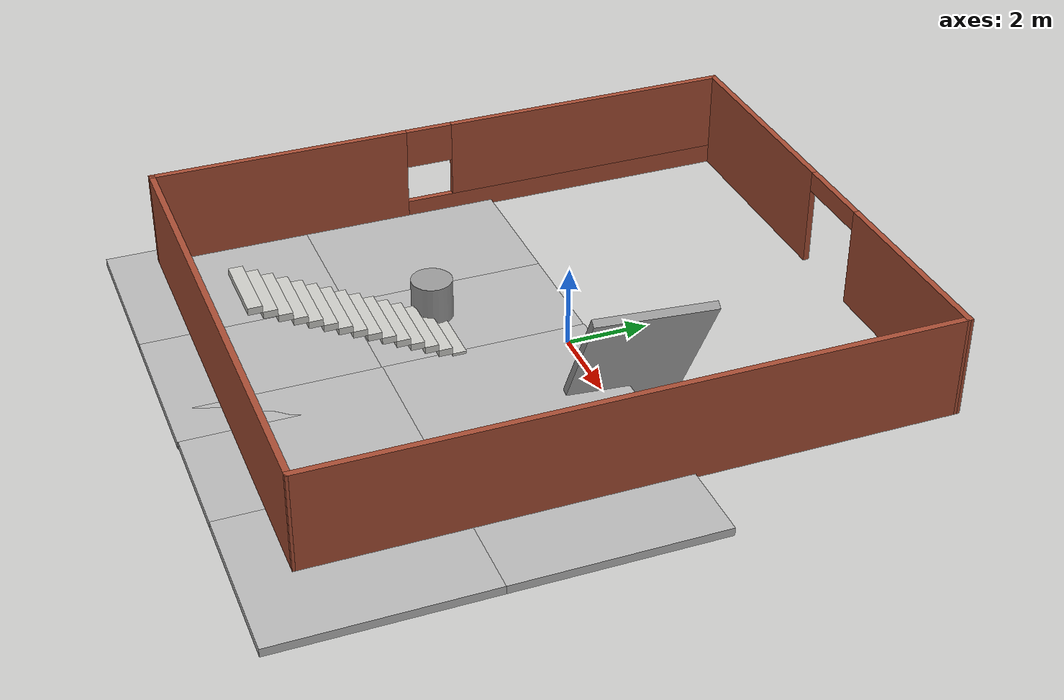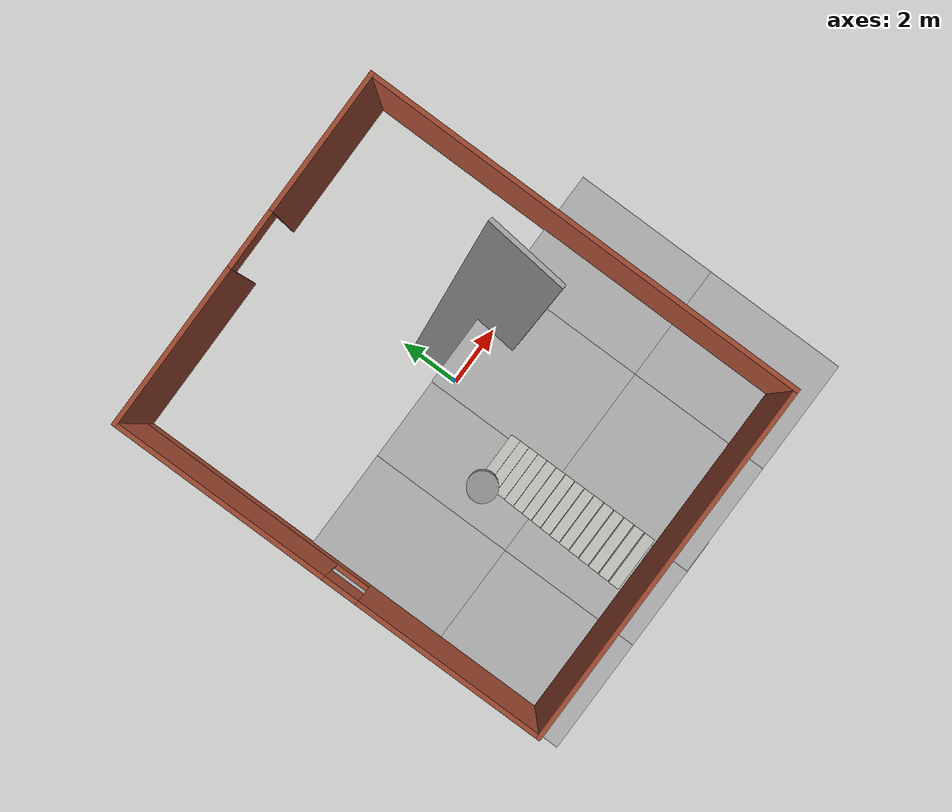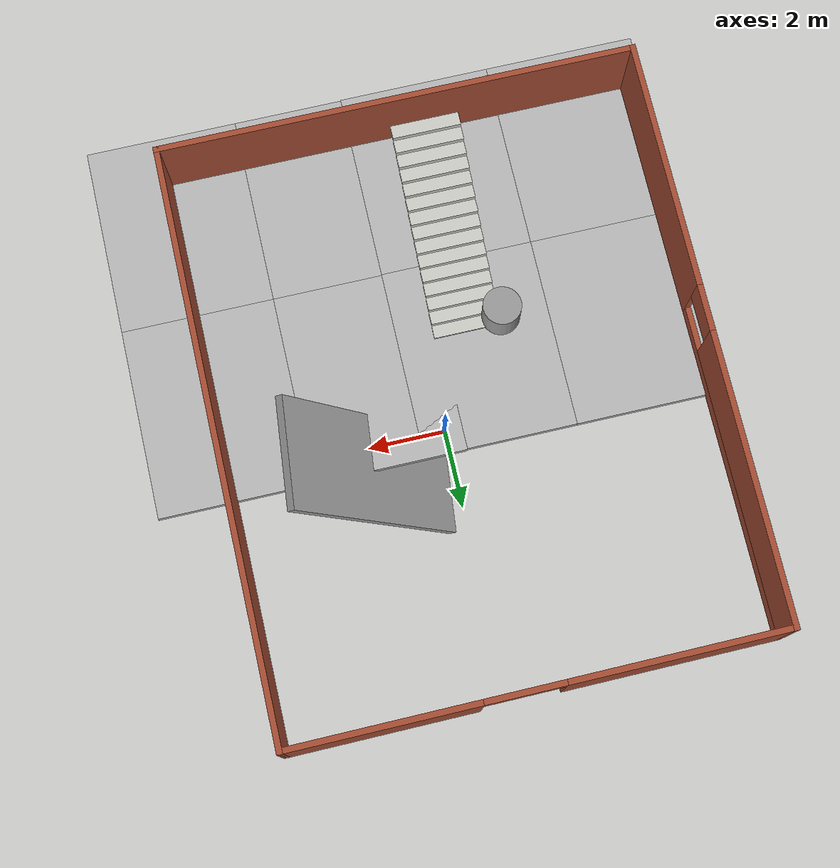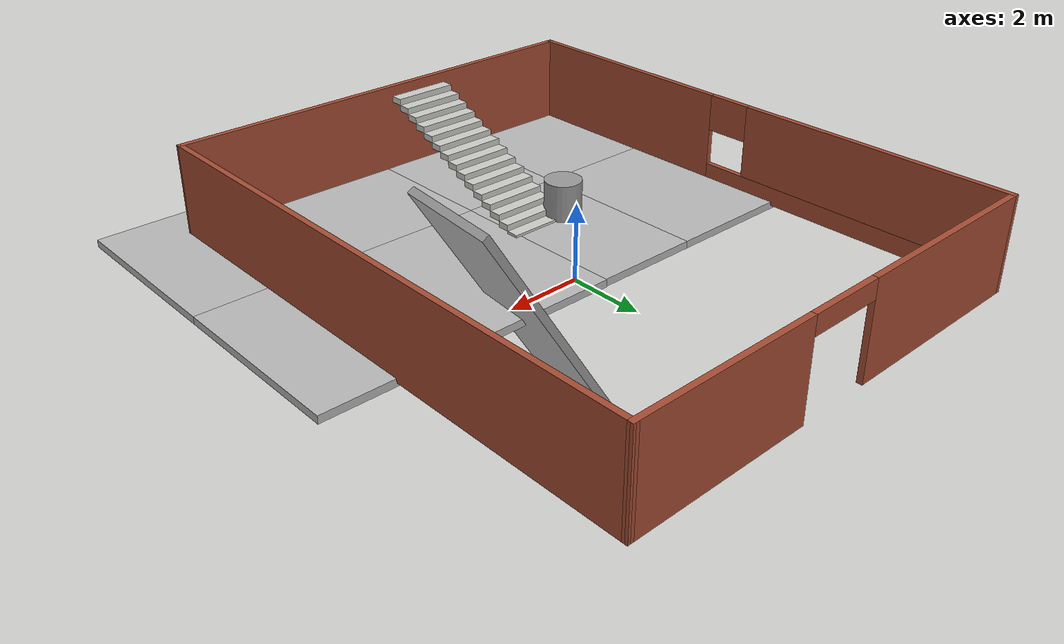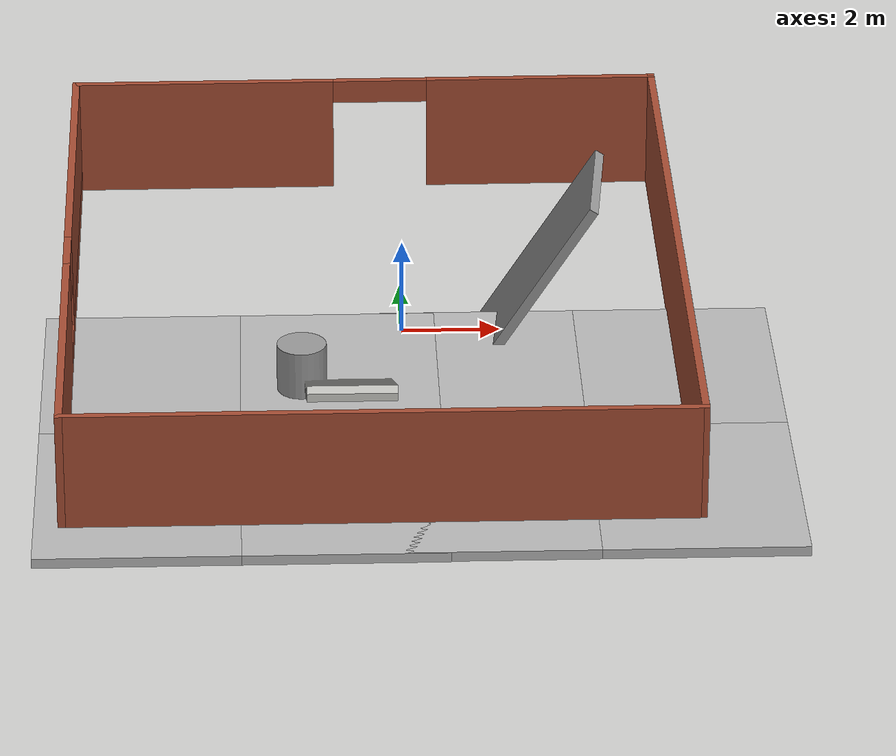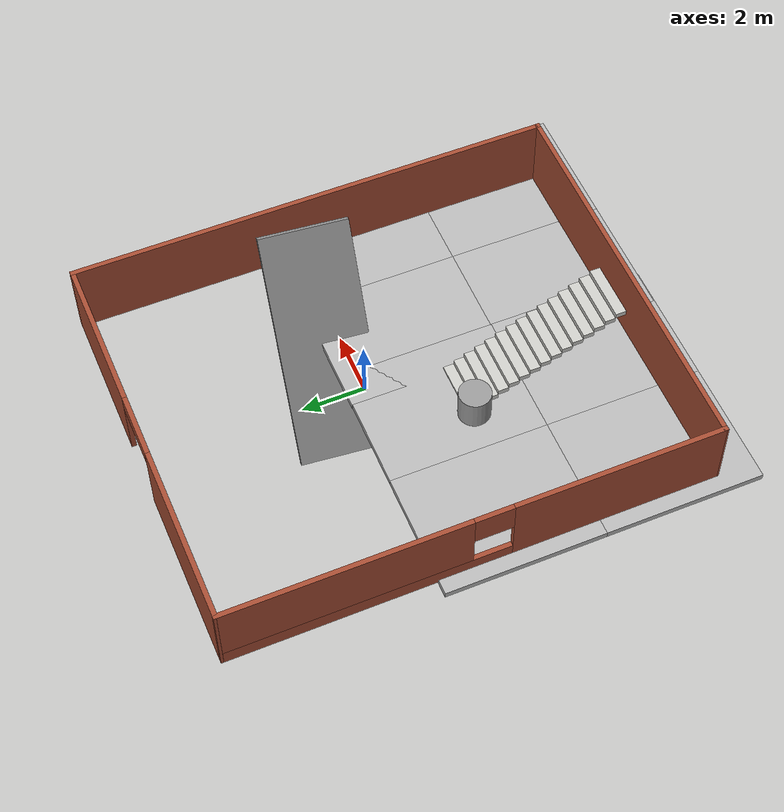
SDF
<sdf version="1.6">
 <world name="default">
  <model name="mud_box_3">
   <static>1</static>
   <link name="link">
    <collision name="collision"><geometry><box><size>8 10 0.2</size></box></geometry></collision>
    <visual name="visual_1">
     <pose>-2 2.5 0 0 -0 0</pose>
     <cast_shadows>0</cast_shadows>
     <geometry><box><size>4 5 0.2</size></box></geometry>
     <material>
      <script>
       <uri>model://mud_box/materials/scripts</uri>
       <uri>model://mud_box/materials/textures</uri>
       <name>vrc/mud</name>
      </script>
     </material>
    </visual>
    <visual name="visual_2">
     <pose>2 2.5 0 0 -0 0</pose>
     <cast_shadows>0</cast_shadows>
     <geometry><box><size>4 5 0.2</size></box></geometry>
     <material>
      <script>
       <uri>model://mud_box/materials/scripts</uri>
       <uri>model://mud_box/materials/textures</uri>
       <name>vrc/mud</name>
      </script>
     </material>
    </visual>
    <visual name="visual_3">
     <pose>2 -2.5 0 0 -0 0</pose>
     <cast_shadows>0</cast_shadows>
     <geometry><box><size>4 5 0.2</size></box></geometry>
     <material>
      <script>
       <uri>model://mud_box/materials/scripts</uri>
       <uri>model://mud_box/materials/textures</uri>
       <name>vrc/mud</name>
      </script>
     </material>
    </visual>
    <visual name="visual_4">
     <pose>-2 -2.5 0 0 -0 0</pose>
     <cast_shadows>0</cast_shadows>
     <geometry><box><size>4 5 0.2</size></box></geometry>
     <material>
      <script>
       <uri>model://mud_box/materials/scripts</uri>
       <uri>model://mud_box/materials/textures</uri>
       <name>vrc/mud</name>
      </script>
     </material>
    </visual>
   </link>
   <pose>3.54536 -4.40262 0 0 -0 0</pose>
  </model>
  <model name="mud_box_4">
   <static>1</static>
   <link name="link">
    <collision name="collision"><geometry><box><size>8 10 0.2</size></box></geometry></collision>
    <visual name="visual_1">
     <pose>-2 2.5 0 0 -0 0</pose>
     <cast_shadows>0</cast_shadows>
     <geometry><box><size>4 5 0.2</size></box></geometry>
     <material>
      <script>
       <uri>model://mud_box/materials/scripts</uri>
       <uri>model://mud_box/materials/textures</uri>
       <name>vrc/mud</name>
      </script>
     </material>
    </visual>
    <visual name="visual_2">
     <pose>2 2.5 0 0 -0 0</pose>
     <cast_shadows>0</cast_shadows>
     <geometry><box><size>4 5 0.2</size></box></geometry>
     <material>
      <script>
       <uri>model://mud_box/materials/scripts</uri>
       <uri>model://mud_box/materials/textures</uri>
       <name>vrc/mud</name>
      </script>
     </material>
    </visual>
    <visual name="visual_3">
     <pose>2 -2.5 0 0 -0 0</pose>
     <cast_shadows>0</cast_shadows>
     <geometry><box><size>4 5 0.2</size></box></geometry>
     <material>
      <script>
       <uri>model://mud_box/materials/scripts</uri>
       <uri>model://mud_box/materials/textures</uri>
       <name>vrc/mud</name>
      </script>
     </material>
    </visual>
    <visual name="visual_4">
     <pose>-2 -2.5 0 0 -0 0</pose>
     <cast_shadows>0</cast_shadows>
     <geometry><box><size>4 5 0.2</size></box></geometry>
     <material>
      <script>
       <uri>model://mud_box/materials/scripts</uri>
       <uri>model://mud_box/materials/textures</uri>
       <name>vrc/mud</name>
      </script>
     </material>
    </visual>
   </link>
   <pose>-3.33563 -4.4235 0 0 -0 0</pose>
  </model>
  <model name="unit_cylinder_0">
   <pose>-2.09685 -2.63141 0.600224 0.000162 0.000418 0.000599</pose>
   <link name="link">
    <inertial>
     <mass>1</mass>
     <inertia><ixx>0.145833</ixx><ixy>0</ixy><ixz>0</ixz><iyy>0.145833</iyy><iyz>0</iyz><izz>0.125</izz></inertia>
    </inertial>
    <collision name="collision">
     <geometry><cylinder><radius>0.5</radius><length>1</length></cylinder></geometry>
    </collision>
    <visual name="visual">
     <geometry><cylinder><radius>0.5</radius><length>1</length></cylinder></geometry>
     <material>
      <script><name>Gazebo/Grey</name><uri>file://media/materials/scripts/gazebo.material</uri></script>
     </material>
    </visual>
   </link>
  </model>
  <model name="botenv1_0">
   <pose>-0.614757 -0.578065 0 0 -0 0</pose>
   <link name="Stairs_2">
    <visual name="Stairs_2_Visual_0">
     <pose>-0.549734 -2.00833 0.083333 0 -0 0</pose>
     <geometry><box><size>1.75 0.334 0.166667</size></box></geometry>
     <material>
      <script><uri>file://media/materials/scripts/gazebo.material</uri><name>Gazebo/CeilingTiled</name></script>
      <ambient>0.760784 0.662745 0.627451 1</ambient>
     </material>
    </visual>
    <collision name="Stairs_2_Collision_0">
     <geometry><box><size>1.75 0.334 0.166667</size></box></geometry>
     <pose>-0.549734 -2.00833 0.083333 0 -0 0</pose>
    </collision>
    <visual name="Stairs_2_Visual_1">
     <pose>-0.549734 -2.34233 0.25 0 -0 0</pose>
     <geometry><box><size>1.75 0.334 0.166667</size></box></geometry>
     <material>
      <script><uri>file://media/materials/scripts/gazebo.material</uri><name>Gazebo/CeilingTiled</name></script>
      <ambient>0.760784 0.662745 0.627451 1</ambient>
     </material>
    </visual>
    <collision name="Stairs_2_Collision_1">
     <geometry><box><size>1.75 0.334 0.166667</size></box></geometry>
     <pose>-0.549734 -2.34233 0.25 0 -0 0</pose>
    </collision>
    <visual name="Stairs_2_Visual_2">
     <pose>-0.549734 -2.67633 0.416667 0 -0 0</pose>
     <geometry><box><size>1.75 0.334 0.166667</size></box></geometry>
     <material>
      <script><uri>file://media/materials/scripts/gazebo.material</uri><name>Gazebo/CeilingTiled</name></script>
      <ambient>0.760784 0.662745 0.627451 1</ambient>
     </material>
    </visual>
    <collision name="Stairs_2_Collision_2">
     <geometry><box><size>1.75 0.334 0.166667</size></box></geometry>
     <pose>-0.549734 -2.67633 0.416667 0 -0 0</pose>
    </collision>
    <visual name="Stairs_2_Visual_3">
     <pose>-0.549734 -3.01033 0.583333 0 -0 0</pose>
     <geometry><box><size>1.75 0.334 0.166667</size></box></geometry>
     <material>
      <script><uri>file://media/materials/scripts/gazebo.material</uri><name>Gazebo/CeilingTiled</name></script>
      <ambient>0.760784 0.662745 0.627451 1</ambient>
     </material>
    </visual>
    <collision name="Stairs_2_Collision_3">
     <geometry><box><size>1.75 0.334 0.166667</size></box></geometry>
     <pose>-0.549734 -3.01033 0.583333 0 -0 0</pose>
    </collision>
    <visual name="Stairs_2_Visual_4">
     <pose>-0.549734 -3.34433 0.75 0 -0 0</pose>
     <geometry><box><size>1.75 0.334 0.166667</size></box></geometry>
     <material>
      <script><uri>file://media/materials/scripts/gazebo.material</uri><name>Gazebo/CeilingTiled</name></script>
      <ambient>0.760784 0.662745 0.627451 1</ambient>
     </material>
    </visual>
    <collision name="Stairs_2_Collision_4">
     <geometry><box><size>1.75 0.334 0.166667</size></box></geometry>
     <pose>-0.549734 -3.34433 0.75 0 -0 0</pose>
    </collision>
    <visual name="Stairs_2_Visual_5">
     <pose>-0.549734 -3.67833 0.916667 0 -0 0</pose>
     <geometry><box><size>1.75 0.334 0.166667</size></box></geometry>
     <material>
      <script><uri>file://media/materials/scripts/gazebo.material</uri><name>Gazebo/CeilingTiled</name></script>
      <ambient>0.760784 0.662745 0.627451 1</ambient>
     </material>
    </visual>
    <collision name="Stairs_2_Collision_5">
     <geometry><box><size>1.75 0.334 0.166667</size></box></geometry>
     <pose>-0.549734 -3.67833 0.916667 0 -0 0</pose>
    </collision>
    <visual name="Stairs_2_Visual_6">
     <pose>-0.549734 -4.01233 1.08333 0 -0 0</pose>
     <geometry><box><size>1.75 0.334 0.166667</size></box></geometry>
     <material>
      <script><uri>file://media/materials/scripts/gazebo.material</uri><name>Gazebo/CeilingTiled</name></script>
      <ambient>0.760784 0.662745 0.627451 1</ambient>
     </material>
    </visual>
    <collision name="Stairs_2_Collision_6">
     <geometry><box><size>1.75 0.334 0.166667</size></box></geometry>
     <pose>-0.549734 -4.01233 1.08333 0 -0 0</pose>
    </collision>
    <visual name="Stairs_2_Visual_7">
     <pose>-0.549734 -4.34633 1.25 0 -0 0</pose>
     <geometry><box><size>1.75 0.334 0.166667</size></box></geometry>
     <material>
      <script><uri>file://media/materials/scripts/gazebo.material</uri><name>Gazebo/CeilingTiled</name></script>
      <ambient>0.760784 0.662745 0.627451 1</ambient>
     </material>
    </visual>
    <collision name="Stairs_2_Collision_7">
     <geometry><box><size>1.75 0.334 0.166667</size></box></geometry>
     <pose>-0.549734 -4.34633 1.25 0 -0 0</pose>
    </collision>
    <visual name="Stairs_2_Visual_8">
     <pose>-0.549734 -4.68033 1.41667 0 -0 0</pose>
     <geometry><box><size>1.75 0.334 0.166667</size></box></geometry>
     <material>
      <script><uri>file://media/materials/scripts/gazebo.material</uri><name>Gazebo/CeilingTiled</name></script>
      <ambient>0.760784 0.662745 0.627451 1</ambient>
     </material>
    </visual>
    <collision name="Stairs_2_Collision_8">
     <geometry><box><size>1.75 0.334 0.166667</size></box></geometry>
     <pose>-0.549734 -4.68033 1.41667 0 -0 0</pose>
    </collision>
    <visual name="Stairs_2_Visual_9">
     <pose>-0.549734 -5.01433 1.58333 0 -0 0</pose>
     <geometry><box><size>1.75 0.334 0.166667</size></box></geometry>
     <material>
      <script><uri>file://media/materials/scripts/gazebo.material</uri><name>Gazebo/CeilingTiled</name></script>
      <ambient>0.760784 0.662745 0.627451 1</ambient>
     </material>
    </visual>
    <collision name="Stairs_2_Collision_9">
     <geometry><box><size>1.75 0.334 0.166667</size></box></geometry>
     <pose>-0.549734 -5.01433 1.58333 0 -0 0</pose>
    </collision>
    <visual name="Stairs_2_Visual_10">
     <pose>-0.549734 -5.34833 1.75 0 -0 0</pose>
     <geometry><box><size>1.75 0.334 0.166667</size></box></geometry>
     <material>
      <script><uri>file://media/materials/scripts/gazebo.material</uri><name>Gazebo/CeilingTiled</name></script>
      <ambient>0.760784 0.662745 0.627451 1</ambient>
     </material>
    </visual>
    <collision name="Stairs_2_Collision_10">
     <geometry><box><size>1.75 0.334 0.166667</size></box></geometry>
     <pose>-0.549734 -5.34833 1.75 0 -0 0</pose>
    </collision>
    <visual name="Stairs_2_Visual_11">
     <pose>-0.549734 -5.68233 1.91667 0 -0 0</pose>
     <geometry><box><size>1.75 0.334 0.166667</size></box></geometry>
     <material>
      <script><uri>file://media/materials/scripts/gazebo.material</uri><name>Gazebo/CeilingTiled</name></script>
      <ambient>0.760784 0.662745 0.627451 1</ambient>
     </material>
    </visual>
    <collision name="Stairs_2_Collision_11">
     <geometry><box><size>1.75 0.334 0.166667</size></box></geometry>
     <pose>-0.549734 -5.68233 1.91667 0 -0 0</pose>
    </collision>
    <visual name="Stairs_2_Visual_12">
     <pose>-0.549734 -6.01633 2.08333 0 -0 0</pose>
     <geometry><box><size>1.75 0.334 0.166667</size></box></geometry>
     <material>
      <script><uri>file://media/materials/scripts/gazebo.material</uri><name>Gazebo/CeilingTiled</name></script>
      <ambient>0.760784 0.662745 0.627451 1</ambient>
     </material>
    </visual>
    <collision name="Stairs_2_Collision_12">
     <geometry><box><size>1.75 0.334 0.166667</size></box></geometry>
     <pose>-0.549734 -6.01633 2.08333 0 -0 0</pose>
    </collision>
    <visual name="Stairs_2_Visual_13">
     <pose>-0.549734 -6.35033 2.25 0 -0 0</pose>
     <geometry><box><size>1.75 0.334 0.166667</size></box></geometry>
     <material>
      <script><uri>file://media/materials/scripts/gazebo.material</uri><name>Gazebo/CeilingTiled</name></script>
      <ambient>0.760784 0.662745 0.627451 1</ambient>
     </material>
    </visual>
    <collision name="Stairs_2_Collision_13">
     <geometry><box><size>1.75 0.334 0.166667</size></box></geometry>
     <pose>-0.549734 -6.35033 2.25 0 -0 0</pose>
    </collision>
    <visual name="Stairs_2_Visual_14">
     <pose>-0.549734 -6.68433 2.41667 0 -0 0</pose>
     <geometry><box><size>1.75 0.334 0.166667</size></box></geometry>
     <material>
      <script><uri>file://media/materials/scripts/gazebo.material</uri><name>Gazebo/CeilingTiled</name></script>
      <ambient>0.760784 0.662745 0.627451 1</ambient>
     </material>
    </visual>
    <collision name="Stairs_2_Collision_14">
     <geometry><box><size>1.75 0.334 0.166667</size></box></geometry>
     <pose>-0.549734 -6.68433 2.41667 0 -0 0</pose>
    </collision>
   </link>
   <link name="Wall_11">
    <pose>0 7.53397 0 0 0 -3.13611</pose>
    <visual name="Wall_11_Visual_0">
     <pose>-3.80989 0 1.25 0 -0 0</pose>
     <geometry><box><size>4.9244 0.15 2.5</size></box></geometry>
     <material>
      <script><uri>file://media/materials/scripts/gazebo.material</uri><name>Gazebo/Bricks</name></script>
      <ambient>1 1 1 1</ambient>
     </material>
    </visual>
    <collision name="Wall_11_Collision_0">
     <geometry><box><size>4.9244 0.15 2.5</size></box></geometry>
     <pose>-3.80989 0 1.25 0 -0 0</pose>
    </collision>
    <visual name="Wall_11_Visual_1">
     <pose>3.47078 0 1.25 0 -0 0</pose>
     <geometry><box><size>5.60263 0.15 2.5</size></box></geometry>
     <material>
      <script><uri>file://media/materials/scripts/gazebo.material</uri><name>Gazebo/Bricks</name></script>
      <ambient>1 1 1 1</ambient>
     </material>
    </visual>
    <collision name="Wall_11_Collision_1">
     <geometry><box><size>5.60263 0.15 2.5</size></box></geometry>
     <pose>3.47078 0 1.25 0 -0 0</pose>
    </collision>
    <visual name="Wall_11_Visual_2">
     <pose>-0.339116 0 2.25 0 -0 0</pose>
     <geometry><box><size>2.01715 0.15 0.5</size></box></geometry>
     <material>
      <script><uri>file://media/materials/scripts/gazebo.material</uri><name>Gazebo/Bricks</name></script>
      <ambient>1 1 1 1</ambient>
     </material>
    </visual>
    <collision name="Wall_11_Collision_2">
     <geometry><box><size>2.01715 0.15 0.5</size></box></geometry>
     <pose>-0.339116 0 2.25 0 -0 0</pose>
    </collision>
   </link>
   <link name="Wall_15">
    <collision name="Wall_15_Collision">
     <geometry><box><size>15.2861 0.15 2.5</size></box></geometry>
     <pose>0 0 1.25 0 -0 0</pose>
    </collision>
    <visual name="Wall_15_Visual">
     <pose>0 0 1.25 0 -0 0</pose>
     <geometry><box><size>15.2861 0.15 2.5</size></box></geometry>
     <material>
      <script><uri>file://media/materials/scripts/gazebo.material</uri><name>Gazebo/Bricks</name></script>
      <ambient>1 1 1 1</ambient>
     </material>
    </visual>
    <pose>6.189 -3.1e-05 0 0 -0 1.56974</pose>
   </link>
   <link name="Wall_5">
    <collision name="Wall_5_Collision">
     <geometry><box><size>12.5 0.15 2.5</size></box></geometry>
     <pose>0 0 1.25 0 -0 0</pose>
    </collision>
    <visual name="Wall_5_Visual">
     <pose>0 0 1.25 0 -0 0</pose>
     <geometry><box><size>12.5 0.15 2.5</size></box></geometry>
     <material>
      <script><uri>file://media/materials/scripts/gazebo.material</uri><name>Gazebo/Bricks</name></script>
      <ambient>1 1 1 1</ambient>
     </material>
    </visual>
    <pose>0.006 -7.56803 0 0 -0 0</pose>
   </link>
   <link name="Wall_8">
    <pose>-6.183 -0.034031 0 0 -0 1.57265</pose>
    <visual name="Wall_8_Visual_0">
     <pose>-4.338 0 1.25 0 -0 0</pose>
     <geometry><box><size>6.54244 0.15 2.5</size></box></geometry>
     <material>
      <script><uri>file://media/materials/scripts/gazebo.material</uri><name>Gazebo/Bricks</name></script>
      <ambient>1 1 1 1</ambient>
     </material>
    </visual>
    <collision name="Wall_8_Collision_0">
     <geometry><box><size>6.54244 0.15 2.5</size></box></geometry>
     <pose>-4.338 0 1.25 0 -0 0</pose>
    </collision>
    <visual name="Wall_8_Visual_1">
     <pose>3.27122 0 0.25 0 -0 0</pose>
     <geometry><box><size>8.676 0.15 0.5</size></box></geometry>
     <material>
      <script><uri>file://media/materials/scripts/gazebo.material</uri><name>Gazebo/Bricks</name></script>
      <ambient>1 1 1 1</ambient>
     </material>
    </visual>
    <collision name="Wall_8_Collision_1">
     <geometry><box><size>8.676 0.15 0.5</size></box></geometry>
     <pose>3.27122 0 0.25 0 -0 0</pose>
    </collision>
    <visual name="Wall_8_Visual_2">
     <pose>3.86872 0 1.5 0 -0 0</pose>
     <geometry><box><size>7.481 0.15 2</size></box></geometry>
     <material>
      <script><uri>file://media/materials/scripts/gazebo.material</uri><name>Gazebo/Bricks</name></script>
      <ambient>1 1 1 1</ambient>
     </material>
    </visual>
    <collision name="Wall_8_Collision_2">
     <geometry><box><size>7.481 0.15 2</size></box></geometry>
     <pose>3.86872 0 1.5 0 -0 0</pose>
    </collision>
    <visual name="Wall_8_Visual_3">
     <pose>-0.469281 0 2 0 -0 0</pose>
     <geometry><box><size>1.195 0.15 1</size></box></geometry>
     <material>
      <script><uri>file://media/materials/scripts/gazebo.material</uri><name>Gazebo/Bricks</name></script>
      <ambient>1 1 1 1</ambient>
     </material>
    </visual>
    <collision name="Wall_8_Collision_3">
     <geometry><box><size>1.195 0.15 1</size></box></geometry>
     <pose>-0.469281 0 2 0 -0 0</pose>
    </collision>
   </link>
   <static>1</static>
  </model>
  <model name="grey_wall_0">
   <static>1</static>
   <link name="link">
    <pose>0 0 1.4 0 -0 0</pose>
    <collision name="collision"><geometry><box><size>7.5 0.2 2.8</size></box></geometry></collision>
    <visual name="visual">
     <cast_shadows>0</cast_shadows>
     <geometry><box><size>7.5 0.2 2.8</size></box></geometry>
     <material>
      <script>
       <uri>model://grey_wall/materials/scripts</uri>
       <uri>model://grey_wall/materials/textures</uri>
       <name>vrc/grey_wall</name>
      </script>
     </material>
    </visual>
   </link>
   <pose>1.89019 -0.878469 0 -1.567 -1.01828 -0.105864</pose>
  </model>
 </world>
</sdf>
